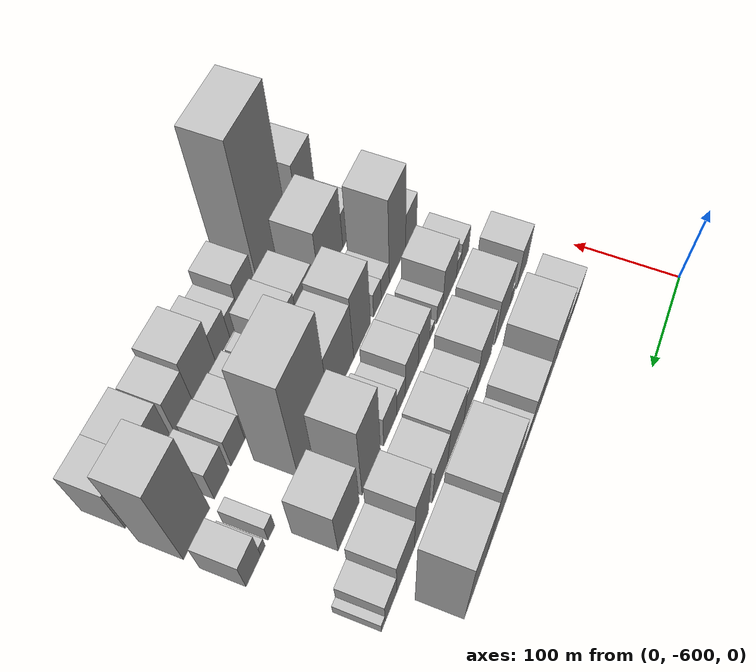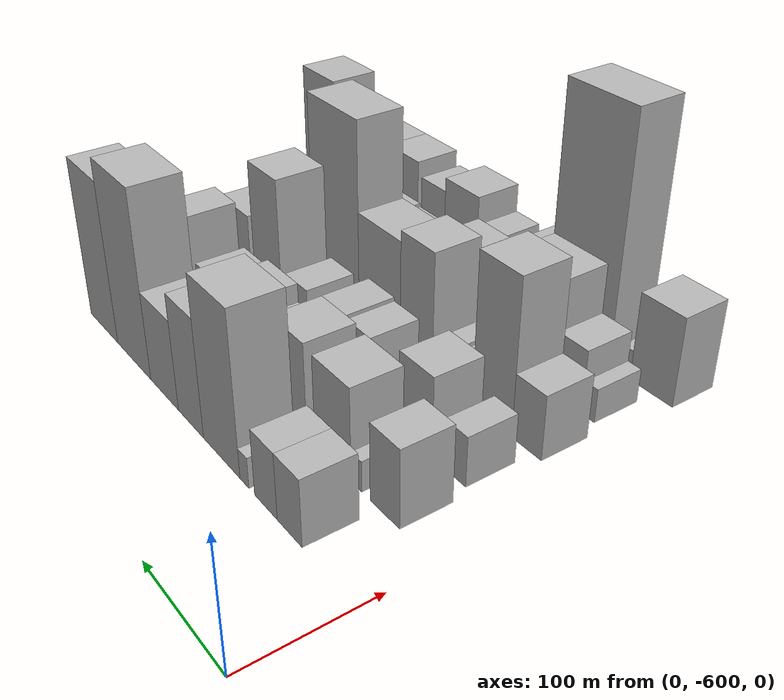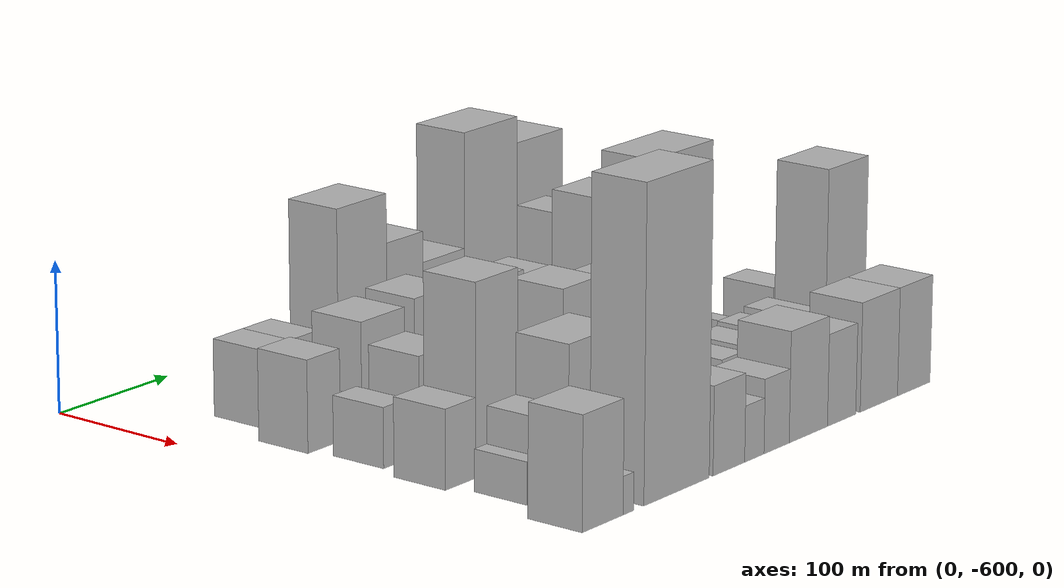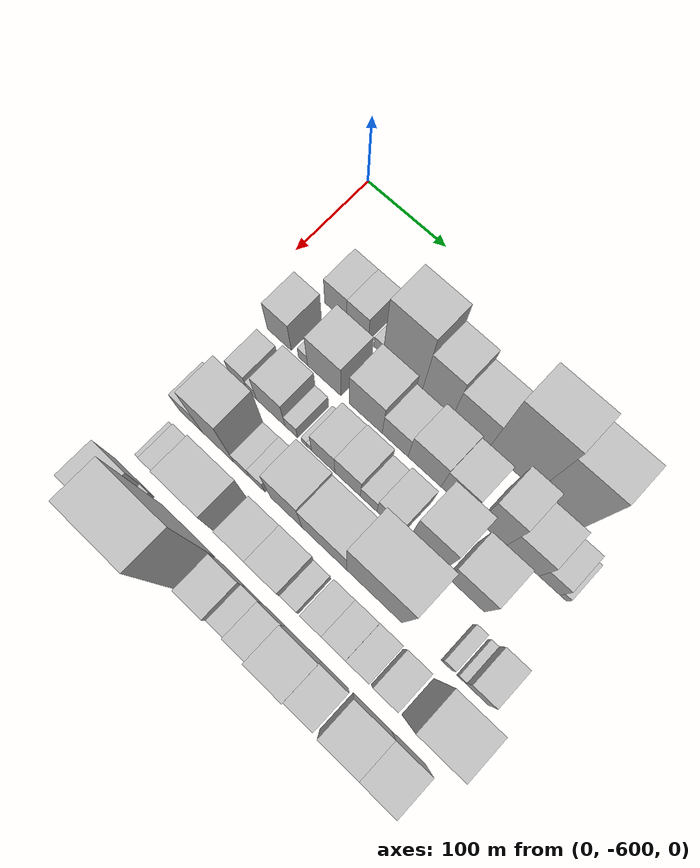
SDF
<sdf version="1.6">
 <world name="default">
  <model name="building_12">
   <static>1</static>
   <pose>100.0000 -529.5329 0 0.000000 0.000000 0.000000</pose>
   <link name="link">
    <pose>0 0 25.50 0 0 0</pose>
    <collision name="collision"><geometry><box><size>40.0000 28.2539 51.0000</size></box></geometry></collision>
    <visual name="visual">
     <cast_shadows>0</cast_shadows>
     <geometry><box><size>40.0000 28.2539 51.0000</size></box></geometry>
     <material>
      <script>
       <uri>model://HANNAS_wall/materials/scripts</uri>
       <uri>model://HANNAS_wall/materials/textures</uri>
       <name>vrc/HANNAS_wall</name>
      </script>
     </material>
    </visual>
   </link>
  </model>
  <model name="building_13">
   <static>1</static>
   <pose>100.0000 -501.8472 0 0.000000 0.000000 0.000000</pose>
   <link name="link">
    <pose>0 0 25.50 0 0 0</pose>
    <collision name="collision"><geometry><box><size>40.0000 27.1175 51.0000</size></box></geometry></collision>
    <visual name="visual">
     <cast_shadows>0</cast_shadows>
     <geometry><box><size>40.0000 27.1175 51.0000</size></box></geometry>
     <material>
      <script>
       <uri>model://HANNAS_wall/materials/scripts</uri>
       <uri>model://HANNAS_wall/materials/textures</uri>
       <name>vrc/HANNAS_wall</name>
      </script>
     </material>
    </visual>
   </link>
  </model>
  <model name="building_14">
   <static>1</static>
   <pose>100.0000 -475.6288 0 0.000000 0.000000 0.000000</pose>
   <link name="link">
    <pose>0 0 12.00 0 0 0</pose>
    <collision name="collision"><geometry><box><size>40.0000 11.3192 24.0000</size></box></geometry></collision>
    <visual name="visual">
     <cast_shadows>0</cast_shadows>
     <geometry><box><size>40.0000 11.3192 24.0000</size></box></geometry>
     <material>
      <script>
       <uri>model://HANNAS_wall/materials/scripts</uri>
       <uri>model://HANNAS_wall/materials/textures</uri>
       <name>vrc/HANNAS_wall</name>
      </script>
     </material>
    </visual>
   </link>
  </model>
  <model name="building_15">
   <static>1</static>
   <pose>100.0000 -445.5690 0 0.000000 0.000000 0.000000</pose>
   <link name="link">
    <pose>0 0 63.00 0 0 0</pose>
    <collision name="collision"><geometry><box><size>40.0000 48.8003 126.0000</size></box></geometry></collision>
    <visual name="visual">
     <cast_shadows>0</cast_shadows>
     <geometry><box><size>40.0000 48.8003 126.0000</size></box></geometry>
     <material>
      <script>
       <uri>model://HANNAS_wall/materials/scripts</uri>
       <uri>model://HANNAS_wall/materials/textures</uri>
       <name>vrc/HANNAS_wall</name>
      </script>
     </material>
    </visual>
   </link>
  </model>
  <model name="building_16">
   <static>1</static>
   <pose>100.0000 -402.9432 0 0.000000 0.000000 0.000000</pose>
   <link name="link">
    <pose>0 0 46.50 0 0 0</pose>
    <collision name="collision"><geometry><box><size>40.0000 36.4514 93.0000</size></box></geometry></collision>
    <visual name="visual">
     <cast_shadows>0</cast_shadows>
     <geometry><box><size>40.0000 36.4514 93.0000</size></box></geometry>
     <material>
      <script>
       <uri>model://HANNAS_wall/materials/scripts</uri>
       <uri>model://HANNAS_wall/materials/textures</uri>
       <name>vrc/HANNAS_wall</name>
      </script>
     </material>
    </visual>
   </link>
  </model>
  <model name="building_17">
   <static>1</static>
   <pose>100.0000 -363.1853 0 0.000000 0.000000 0.000000</pose>
   <link name="link">
    <pose>0 0 36.00 0 0 0</pose>
    <collision name="collision"><geometry><box><size>40.0000 43.0645 72.0000</size></box></geometry></collision>
    <visual name="visual">
     <cast_shadows>0</cast_shadows>
     <geometry><box><size>40.0000 43.0645 72.0000</size></box></geometry>
     <material>
      <script>
       <uri>model://HANNAS_wall/materials/scripts</uri>
       <uri>model://HANNAS_wall/materials/textures</uri>
       <name>vrc/HANNAS_wall</name>
      </script>
     </material>
    </visual>
   </link>
  </model>
  <model name="building_18">
   <static>1</static>
   <pose>100.0000 -313.5661 0 0.000000 0.000000 0.000000</pose>
   <link name="link">
    <pose>0 0 75.00 0 0 0</pose>
    <collision name="collision"><geometry><box><size>40.0000 56.1737 150.0000</size></box></geometry></collision>
    <visual name="visual">
     <cast_shadows>0</cast_shadows>
     <geometry><box><size>40.0000 56.1737 150.0000</size></box></geometry>
     <material>
      <script>
       <uri>model://HANNAS_wall/materials/scripts</uri>
       <uri>model://HANNAS_wall/materials/textures</uri>
       <name>vrc/HANNAS_wall</name>
      </script>
     </material>
    </visual>
   </link>
  </model>
  <model name="building_19">
   <static>1</static>
   <pose>100.0000 -260.8555 0 0.000000 0.000000 0.000000</pose>
   <link name="link">
    <pose>0 0 66.00 0 0 0</pose>
    <collision name="collision"><geometry><box><size>40.0000 49.2475 132.0000</size></box></geometry></collision>
    <visual name="visual">
     <cast_shadows>0</cast_shadows>
     <geometry><box><size>40.0000 49.2475 132.0000</size></box></geometry>
     <material>
      <script>
       <uri>model://HANNAS_wall/materials/scripts</uri>
       <uri>model://HANNAS_wall/materials/textures</uri>
       <name>vrc/HANNAS_wall</name>
      </script>
     </material>
    </visual>
   </link>
  </model>
  <model name="building_62">
   <static>1</static>
   <pose>155.0000 -548.5845 0 0.000000 0.000000 0.000000</pose>
   <link name="link">
    <pose>0 0 30.00 0 0 0</pose>
    <collision name="collision"><geometry><box><size>40.0000 30.6883 60.0000</size></box></geometry></collision>
    <visual name="visual">
     <cast_shadows>0</cast_shadows>
     <geometry><box><size>40.0000 30.6883 60.0000</size></box></geometry>
     <material>
      <script>
       <uri>model://HANNAS_wall/materials/scripts</uri>
       <uri>model://HANNAS_wall/materials/textures</uri>
       <name>vrc/HANNAS_wall</name>
      </script>
     </material>
    </visual>
   </link>
  </model>
  <model name="building_63">
   <static>1</static>
   <pose>155.0000 -518.3964 0 0.000000 0.000000 0.000000</pose>
   <link name="link">
    <pose>0 0 12.00 0 0 0</pose>
    <collision name="collision"><geometry><box><size>40.0000 11.6881 24.0000</size></box></geometry></collision>
    <visual name="visual">
     <cast_shadows>0</cast_shadows>
     <geometry><box><size>40.0000 11.6881 24.0000</size></box></geometry>
     <material>
      <script>
       <uri>model://HANNAS_wall/materials/scripts</uri>
       <uri>model://HANNAS_wall/materials/textures</uri>
       <name>vrc/HANNAS_wall</name>
      </script>
     </material>
    </visual>
   </link>
  </model>
  <model name="building_64">
   <static>1</static>
   <pose>155.0000 -491.5503 0 0.000000 0.000000 0.000000</pose>
   <link name="link">
    <pose>0 0 36.00 0 0 0</pose>
    <collision name="collision"><geometry><box><size>40.0000 42.0041 72.0000</size></box></geometry></collision>
    <visual name="visual">
     <cast_shadows>0</cast_shadows>
     <geometry><box><size>40.0000 42.0041 72.0000</size></box></geometry>
     <material>
      <script>
       <uri>model://HANNAS_wall/materials/scripts</uri>
       <uri>model://HANNAS_wall/materials/textures</uri>
       <name>vrc/HANNAS_wall</name>
      </script>
     </material>
    </visual>
   </link>
  </model>
  <model name="building_65">
   <static>1</static>
   <pose>155.0000 -440.3169 0 0.000000 0.000000 0.000000</pose>
   <link name="link">
    <pose>0 0 37.50 0 0 0</pose>
    <collision name="collision"><geometry><box><size>40.0000 40.4627 75.0000</size></box></geometry></collision>
    <visual name="visual">
     <cast_shadows>0</cast_shadows>
     <geometry><box><size>40.0000 40.4627 75.0000</size></box></geometry>
     <material>
      <script>
       <uri>model://HANNAS_wall/materials/scripts</uri>
       <uri>model://HANNAS_wall/materials/textures</uri>
       <name>vrc/HANNAS_wall</name>
      </script>
     </material>
    </visual>
   </link>
  </model>
  <model name="building_66">
   <static>1</static>
   <pose>155.0000 -404.3865 0 0.000000 0.000000 0.000000</pose>
   <link name="link">
    <pose>0 0 27.00 0 0 0</pose>
    <collision name="collision"><geometry><box><size>40.0000 31.3980 54.0000</size></box></geometry></collision>
    <visual name="visual">
     <cast_shadows>0</cast_shadows>
     <geometry><box><size>40.0000 31.3980 54.0000</size></box></geometry>
     <material>
      <script>
       <uri>model://HANNAS_wall/materials/scripts</uri>
       <uri>model://HANNAS_wall/materials/textures</uri>
       <name>vrc/HANNAS_wall</name>
      </script>
     </material>
    </visual>
   </link>
  </model>
  <model name="building_67">
   <static>1</static>
   <pose>155.0000 -368.8758 0 0.000000 0.000000 0.000000</pose>
   <link name="link">
    <pose>0 0 34.50 0 0 0</pose>
    <collision name="collision"><geometry><box><size>40.0000 39.6234 69.0000</size></box></geometry></collision>
    <visual name="visual">
     <cast_shadows>0</cast_shadows>
     <geometry><box><size>40.0000 39.6234 69.0000</size></box></geometry>
     <material>
      <script>
       <uri>model://HANNAS_wall/materials/scripts</uri>
       <uri>model://HANNAS_wall/materials/textures</uri>
       <name>vrc/HANNAS_wall</name>
      </script>
     </material>
    </visual>
   </link>
  </model>
  <model name="building_68">
   <static>1</static>
   <pose>155.0000 -331.5309 0 0.000000 0.000000 0.000000</pose>
   <link name="link">
    <pose>0 0 31.50 0 0 0</pose>
    <collision name="collision"><geometry><box><size>40.0000 35.0662 63.0000</size></box></geometry></collision>
    <visual name="visual">
     <cast_shadows>0</cast_shadows>
     <geometry><box><size>40.0000 35.0662 63.0000</size></box></geometry>
     <material>
      <script>
       <uri>model://HANNAS_wall/materials/scripts</uri>
       <uri>model://HANNAS_wall/materials/textures</uri>
       <name>vrc/HANNAS_wall</name>
      </script>
     </material>
    </visual>
   </link>
  </model>
  <model name="building_69">
   <static>1</static>
   <pose>155.0000 -289.3106 0 0.000000 0.000000 0.000000</pose>
   <link name="link">
    <pose>0 0 48.00 0 0 0</pose>
    <collision name="collision"><geometry><box><size>40.0000 31.3745 96.0000</size></box></geometry></collision>
    <visual name="visual">
     <cast_shadows>0</cast_shadows>
     <geometry><box><size>40.0000 31.3745 96.0000</size></box></geometry>
     <material>
      <script>
       <uri>model://HANNAS_wall/materials/scripts</uri>
       <uri>model://HANNAS_wall/materials/textures</uri>
       <name>vrc/HANNAS_wall</name>
      </script>
     </material>
    </visual>
   </link>
  </model>
  <model name="building_70">
   <static>1</static>
   <pose>155.0000 -254.7182 0 0.000000 0.000000 0.000000</pose>
   <link name="link">
    <pose>0 0 33.00 0 0 0</pose>
    <collision name="collision"><geometry><box><size>40.0000 37.8103 66.0000</size></box></geometry></collision>
    <visual name="visual">
     <cast_shadows>0</cast_shadows>
     <geometry><box><size>40.0000 37.8103 66.0000</size></box></geometry>
     <material>
      <script>
       <uri>model://HANNAS_wall/materials/scripts</uri>
       <uri>model://HANNAS_wall/materials/textures</uri>
       <name>vrc/HANNAS_wall</name>
      </script>
     </material>
    </visual>
   </link>
  </model>
  <model name="building_71">
   <static>1</static>
   <pose>155.0000 -224.0102 0 0.000000 0.000000 0.000000</pose>
   <link name="link">
    <pose>0 0 21.00 0 0 0</pose>
    <collision name="collision"><geometry><box><size>40.0000 23.6056 42.0000</size></box></geometry></collision>
    <visual name="visual">
     <cast_shadows>0</cast_shadows>
     <geometry><box><size>40.0000 23.6056 42.0000</size></box></geometry>
     <material>
      <script>
       <uri>model://HANNAS_wall/materials/scripts</uri>
       <uri>model://HANNAS_wall/materials/textures</uri>
       <name>vrc/HANNAS_wall</name>
      </script>
     </material>
    </visual>
   </link>
  </model>
  <model name="building_72">
   <static>1</static>
   <pose>155.0000 -208.3590 0 0.000000 0.000000 0.000000</pose>
   <link name="link">
    <pose>0 0 9.00 0 0 0</pose>
    <collision name="collision"><geometry><box><size>40.0000 7.6968 18.0000</size></box></geometry></collision>
    <visual name="visual">
     <cast_shadows>0</cast_shadows>
     <geometry><box><size>40.0000 7.6968 18.0000</size></box></geometry>
     <material>
      <script>
       <uri>model://HANNAS_wall/materials/scripts</uri>
       <uri>model://HANNAS_wall/materials/textures</uri>
       <name>vrc/HANNAS_wall</name>
      </script>
     </material>
    </visual>
   </link>
  </model>
  <model name="building_116">
   <static>1</static>
   <pose>210.0000 -546.1679 0 0.000000 0.000000 0.000000</pose>
   <link name="link">
    <pose>0 0 19.50 0 0 0</pose>
    <collision name="collision"><geometry><box><size>40.0000 22.7940 39.0000</size></box></geometry></collision>
    <visual name="visual">
     <cast_shadows>0</cast_shadows>
     <geometry><box><size>40.0000 22.7940 39.0000</size></box></geometry>
     <material>
      <script>
       <uri>model://HANNAS_wall/materials/scripts</uri>
       <uri>model://HANNAS_wall/materials/textures</uri>
       <name>vrc/HANNAS_wall</name>
      </script>
     </material>
    </visual>
   </link>
  </model>
  <model name="building_117">
   <static>1</static>
   <pose>210.0000 -529.0434 0 0.000000 0.000000 0.000000</pose>
   <link name="link">
    <pose>0 0 13.50 0 0 0</pose>
    <collision name="collision"><geometry><box><size>40.0000 11.4550 27.0000</size></box></geometry></collision>
    <visual name="visual">
     <cast_shadows>0</cast_shadows>
     <geometry><box><size>40.0000 11.4550 27.0000</size></box></geometry>
     <material>
      <script>
       <uri>model://HANNAS_wall/materials/scripts</uri>
       <uri>model://HANNAS_wall/materials/textures</uri>
       <name>vrc/HANNAS_wall</name>
      </script>
     </material>
    </visual>
   </link>
  </model>
  <model name="building_118">
   <static>1</static>
   <pose>210.0000 -505.2971 0 0.000000 0.000000 0.000000</pose>
   <link name="link">
    <pose>0 0 31.50 0 0 0</pose>
    <collision name="collision"><geometry><box><size>40.0000 36.0377 63.0000</size></box></geometry></collision>
    <visual name="visual">
     <cast_shadows>0</cast_shadows>
     <geometry><box><size>40.0000 36.0377 63.0000</size></box></geometry>
     <material>
      <script>
       <uri>model://HANNAS_wall/materials/scripts</uri>
       <uri>model://HANNAS_wall/materials/textures</uri>
       <name>vrc/HANNAS_wall</name>
      </script>
     </material>
    </visual>
   </link>
  </model>
  <model name="building_119">
   <static>1</static>
   <pose>210.0000 -479.4809 0 0.000000 0.000000 0.000000</pose>
   <link name="link">
    <pose>0 0 15.00 0 0 0</pose>
    <collision name="collision"><geometry><box><size>40.0000 15.5946 30.0000</size></box></geometry></collision>
    <visual name="visual">
     <cast_shadows>0</cast_shadows>
     <geometry><box><size>40.0000 15.5946 30.0000</size></box></geometry>
     <material>
      <script>
       <uri>model://HANNAS_wall/materials/scripts</uri>
       <uri>model://HANNAS_wall/materials/textures</uri>
       <name>vrc/HANNAS_wall</name>
      </script>
     </material>
    </visual>
   </link>
  </model>
  <model name="building_120">
   <static>1</static>
   <pose>210.0000 -463.5826 0 0.000000 0.000000 0.000000</pose>
   <link name="link">
    <pose>0 0 7.50 0 0 0</pose>
    <collision name="collision"><geometry><box><size>40.0000 6.2021 15.0000</size></box></geometry></collision>
    <visual name="visual">
     <cast_shadows>0</cast_shadows>
     <geometry><box><size>40.0000 6.2021 15.0000</size></box></geometry>
     <material>
      <script>
       <uri>model://HANNAS_wall/materials/scripts</uri>
       <uri>model://HANNAS_wall/materials/textures</uri>
       <name>vrc/HANNAS_wall</name>
      </script>
     </material>
    </visual>
   </link>
  </model>
  <model name="building_121">
   <static>1</static>
   <pose>210.0000 -457.4552 0 0.000000 0.000000 0.000000</pose>
   <link name="link">
    <pose>0 0 7.50 0 0 0</pose>
    <collision name="collision"><geometry><box><size>40.0000 6.0527 15.0000</size></box></geometry></collision>
    <visual name="visual">
     <cast_shadows>0</cast_shadows>
     <geometry><box><size>40.0000 6.0527 15.0000</size></box></geometry>
     <material>
      <script>
       <uri>model://HANNAS_wall/materials/scripts</uri>
       <uri>model://HANNAS_wall/materials/textures</uri>
       <name>vrc/HANNAS_wall</name>
      </script>
     </material>
    </visual>
   </link>
  </model>
  <model name="building_122">
   <static>1</static>
   <pose>210.0000 -440.1489 0 0.000000 0.000000 0.000000</pose>
   <link name="link">
    <pose>0 0 27.00 0 0 0</pose>
    <collision name="collision"><geometry><box><size>40.0000 28.5598 54.0000</size></box></geometry></collision>
    <visual name="visual">
     <cast_shadows>0</cast_shadows>
     <geometry><box><size>40.0000 28.5598 54.0000</size></box></geometry>
     <material>
      <script>
       <uri>model://HANNAS_wall/materials/scripts</uri>
       <uri>model://HANNAS_wall/materials/textures</uri>
       <name>vrc/HANNAS_wall</name>
      </script>
     </material>
    </visual>
   </link>
  </model>
  <model name="building_123">
   <static>1</static>
   <pose>210.0000 -410.4215 0 0.000000 0.000000 0.000000</pose>
   <link name="link">
    <pose>0 0 28.50 0 0 0</pose>
    <collision name="collision"><geometry><box><size>40.0000 30.8951 57.0000</size></box></geometry></collision>
    <visual name="visual">
     <cast_shadows>0</cast_shadows>
     <geometry><box><size>40.0000 30.8951 57.0000</size></box></geometry>
     <material>
      <script>
       <uri>model://HANNAS_wall/materials/scripts</uri>
       <uri>model://HANNAS_wall/materials/textures</uri>
       <name>vrc/HANNAS_wall</name>
      </script>
     </material>
    </visual>
   </link>
  </model>
  <model name="building_124">
   <static>1</static>
   <pose>210.0000 -385.0666 0 0.000000 0.000000 0.000000</pose>
   <link name="link">
    <pose>0 0 18.00 0 0 0</pose>
    <collision name="collision"><geometry><box><size>40.0000 19.8147 36.0000</size></box></geometry></collision>
    <visual name="visual">
     <cast_shadows>0</cast_shadows>
     <geometry><box><size>40.0000 19.8147 36.0000</size></box></geometry>
     <material>
      <script>
       <uri>model://HANNAS_wall/materials/scripts</uri>
       <uri>model://HANNAS_wall/materials/textures</uri>
       <name>vrc/HANNAS_wall</name>
      </script>
     </material>
    </visual>
   </link>
  </model>
  <model name="building_125">
   <static>1</static>
   <pose>210.0000 -360.4549 0 0.000000 0.000000 0.000000</pose>
   <link name="link">
    <pose>0 0 25.50 0 0 0</pose>
    <collision name="collision"><geometry><box><size>40.0000 29.4086 51.0000</size></box></geometry></collision>
    <visual name="visual">
     <cast_shadows>0</cast_shadows>
     <geometry><box><size>40.0000 29.4086 51.0000</size></box></geometry>
     <material>
      <script>
       <uri>model://HANNAS_wall/materials/scripts</uri>
       <uri>model://HANNAS_wall/materials/textures</uri>
       <name>vrc/HANNAS_wall</name>
      </script>
     </material>
    </visual>
   </link>
  </model>
  <model name="building_126">
   <static>1</static>
   <pose>210.0000 -319.0028 0 0.000000 0.000000 0.000000</pose>
   <link name="link">
    <pose>0 0 61.50 0 0 0</pose>
    <collision name="collision"><geometry><box><size>40.0000 39.4955 123.0000</size></box></geometry></collision>
    <visual name="visual">
     <cast_shadows>0</cast_shadows>
     <geometry><box><size>40.0000 39.4955 123.0000</size></box></geometry>
     <material>
      <script>
       <uri>model://HANNAS_wall/materials/scripts</uri>
       <uri>model://HANNAS_wall/materials/textures</uri>
       <name>vrc/HANNAS_wall</name>
      </script>
     </material>
    </visual>
   </link>
  </model>
  <model name="building_127">
   <static>1</static>
   <pose>210.0000 -271.5386 0 0.000000 0.000000 0.000000</pose>
   <link name="link">
    <pose>0 0 37.50 0 0 0</pose>
    <collision name="collision"><geometry><box><size>40.0000 43.4330 75.0000</size></box></geometry></collision>
    <visual name="visual">
     <cast_shadows>0</cast_shadows>
     <geometry><box><size>40.0000 43.4330 75.0000</size></box></geometry>
     <material>
      <script>
       <uri>model://HANNAS_wall/materials/scripts</uri>
       <uri>model://HANNAS_wall/materials/textures</uri>
       <name>vrc/HANNAS_wall</name>
      </script>
     </material>
    </visual>
   </link>
  </model>
  <model name="building_169">
   <static>1</static>
   <pose>265.0000 -551.5273 0 0.000000 0.000000 0.000000</pose>
   <link name="link">
    <pose>0 0 25.50 0 0 0</pose>
    <collision name="collision"><geometry><box><size>40.0000 28.8281 51.0000</size></box></geometry></collision>
    <visual name="visual">
     <cast_shadows>0</cast_shadows>
     <geometry><box><size>40.0000 28.8281 51.0000</size></box></geometry>
     <material>
      <script>
       <uri>model://HANNAS_wall/materials/scripts</uri>
       <uri>model://HANNAS_wall/materials/textures</uri>
       <name>vrc/HANNAS_wall</name>
      </script>
     </material>
    </visual>
   </link>
  </model>
  <model name="building_170">
   <static>1</static>
   <pose>265.0000 -516.5887 0 0.000000 0.000000 0.000000</pose>
   <link name="link">
    <pose>0 0 61.50 0 0 0</pose>
    <collision name="collision"><geometry><box><size>40.0000 41.0491 123.0000</size></box></geometry></collision>
    <visual name="visual">
     <cast_shadows>0</cast_shadows>
     <geometry><box><size>40.0000 41.0491 123.0000</size></box></geometry>
     <material>
      <script>
       <uri>model://HANNAS_wall/materials/scripts</uri>
       <uri>model://HANNAS_wall/materials/textures</uri>
       <name>vrc/HANNAS_wall</name>
      </script>
     </material>
    </visual>
   </link>
  </model>
  <model name="building_171">
   <static>1</static>
   <pose>265.0000 -486.2040 0 0.000000 0.000000 0.000000</pose>
   <link name="link">
    <pose>0 0 16.50 0 0 0</pose>
    <collision name="collision"><geometry><box><size>40.0000 19.7202 33.0000</size></box></geometry></collision>
    <visual name="visual">
     <cast_shadows>0</cast_shadows>
     <geometry><box><size>40.0000 19.7202 33.0000</size></box></geometry>
     <material>
      <script>
       <uri>model://HANNAS_wall/materials/scripts</uri>
       <uri>model://HANNAS_wall/materials/textures</uri>
       <name>vrc/HANNAS_wall</name>
      </script>
     </material>
    </visual>
   </link>
  </model>
  <model name="building_172">
   <static>1</static>
   <pose>265.0000 -467.2235 0 0.000000 0.000000 0.000000</pose>
   <link name="link">
    <pose>0 0 18.00 0 0 0</pose>
    <collision name="collision"><geometry><box><size>40.0000 18.2410 36.0000</size></box></geometry></collision>
    <visual name="visual">
     <cast_shadows>0</cast_shadows>
     <geometry><box><size>40.0000 18.2410 36.0000</size></box></geometry>
     <material>
      <script>
       <uri>model://HANNAS_wall/materials/scripts</uri>
       <uri>model://HANNAS_wall/materials/textures</uri>
       <name>vrc/HANNAS_wall</name>
      </script>
     </material>
    </visual>
   </link>
  </model>
  <model name="building_173">
   <static>1</static>
   <pose>265.0000 -431.8318 0 0.000000 0.000000 0.000000</pose>
   <link name="link">
    <pose>0 0 49.50 0 0 0</pose>
    <collision name="collision"><geometry><box><size>40.0000 38.5423 99.0000</size></box></geometry></collision>
    <visual name="visual">
     <cast_shadows>0</cast_shadows>
     <geometry><box><size>40.0000 38.5423 99.0000</size></box></geometry>
     <material>
      <script>
       <uri>model://HANNAS_wall/materials/scripts</uri>
       <uri>model://HANNAS_wall/materials/textures</uri>
       <name>vrc/HANNAS_wall</name>
      </script>
     </material>
    </visual>
   </link>
  </model>
  <model name="building_174">
   <static>1</static>
   <pose>265.0000 -386.0556 0 0.000000 0.000000 0.000000</pose>
   <link name="link">
    <pose>0 0 45.00 0 0 0</pose>
    <collision name="collision"><geometry><box><size>40.0000 53.0102 90.0000</size></box></geometry></collision>
    <visual name="visual">
     <cast_shadows>0</cast_shadows>
     <geometry><box><size>40.0000 53.0102 90.0000</size></box></geometry>
     <material>
      <script>
       <uri>model://HANNAS_wall/materials/scripts</uri>
       <uri>model://HANNAS_wall/materials/textures</uri>
       <name>vrc/HANNAS_wall</name>
      </script>
     </material>
    </visual>
   </link>
  </model>
  <model name="building_175">
   <static>1</static>
   <pose>265.0000 -327.1601 0 0.000000 0.000000 0.000000</pose>
   <link name="link">
    <pose>0 0 81.00 0 0 0</pose>
    <collision name="collision"><geometry><box><size>40.0000 64.7807 162.0000</size></box></geometry></collision>
    <visual name="visual">
     <cast_shadows>0</cast_shadows>
     <geometry><box><size>40.0000 64.7807 162.0000</size></box></geometry>
     <material>
      <script>
       <uri>model://HANNAS_wall/materials/scripts</uri>
       <uri>model://HANNAS_wall/materials/textures</uri>
       <name>vrc/HANNAS_wall</name>
      </script>
     </material>
    </visual>
   </link>
  </model>
  <model name="building_176">
   <static>1</static>
   <pose>265.0000 -243.8890 0 0.000000 0.000000 0.000000</pose>
   <link name="link">
    <pose>0 0 13.50 0 0 0</pose>
    <collision name="collision"><geometry><box><size>40.0000 12.5872 27.0000</size></box></geometry></collision>
    <visual name="visual">
     <cast_shadows>0</cast_shadows>
     <geometry><box><size>40.0000 12.5872 27.0000</size></box></geometry>
     <material>
      <script>
       <uri>model://HANNAS_wall/materials/scripts</uri>
       <uri>model://HANNAS_wall/materials/textures</uri>
       <name>vrc/HANNAS_wall</name>
      </script>
     </material>
    </visual>
   </link>
  </model>
  <model name="building_177">
   <static>1</static>
   <pose>265.0000 -228.3760 0 0.000000 0.000000 0.000000</pose>
   <link name="link">
    <pose>0 0 9.00 0 0 0</pose>
    <collision name="collision"><geometry><box><size>40.0000 8.4387 18.0000</size></box></geometry></collision>
    <visual name="visual">
     <cast_shadows>0</cast_shadows>
     <geometry><box><size>40.0000 8.4387 18.0000</size></box></geometry>
     <material>
      <script>
       <uri>model://HANNAS_wall/materials/scripts</uri>
       <uri>model://HANNAS_wall/materials/textures</uri>
       <name>vrc/HANNAS_wall</name>
      </script>
     </material>
    </visual>
   </link>
  </model>
  <model name="building_178">
   <static>1</static>
   <pose>265.0000 -210.9966 0 0.000000 0.000000 0.000000</pose>
   <link name="link">
    <pose>0 0 24.00 0 0 0</pose>
    <collision name="collision"><geometry><box><size>40.0000 26.3201 48.0000</size></box></geometry></collision>
    <visual name="visual">
     <cast_shadows>0</cast_shadows>
     <geometry><box><size>40.0000 26.3201 48.0000</size></box></geometry>
     <material>
      <script>
       <uri>model://HANNAS_wall/materials/scripts</uri>
       <uri>model://HANNAS_wall/materials/textures</uri>
       <name>vrc/HANNAS_wall</name>
      </script>
     </material>
    </visual>
   </link>
  </model>
  <model name="building_220">
   <static>1</static>
   <pose>320.0000 -551.1212 0 0.000000 0.000000 0.000000</pose>
   <link name="link">
    <pose>0 0 13.50 0 0 0</pose>
    <collision name="collision"><geometry><box><size>40.0000 12.1001 27.0000</size></box></geometry></collision>
    <visual name="visual">
     <cast_shadows>0</cast_shadows>
     <geometry><box><size>40.0000 12.1001 27.0000</size></box></geometry>
     <material>
      <script>
       <uri>model://HANNAS_wall/materials/scripts</uri>
       <uri>model://HANNAS_wall/materials/textures</uri>
       <name>vrc/HANNAS_wall</name>
      </script>
     </material>
    </visual>
   </link>
  </model>
  <model name="building_221">
   <static>1</static>
   <pose>320.0000 -531.0703 0 0.000000 0.000000 0.000000</pose>
   <link name="link">
    <pose>0 0 25.50 0 0 0</pose>
    <collision name="collision"><geometry><box><size>40.0000 28.0016 51.0000</size></box></geometry></collision>
    <visual name="visual">
     <cast_shadows>0</cast_shadows>
     <geometry><box><size>40.0000 28.0016 51.0000</size></box></geometry>
     <material>
      <script>
       <uri>model://HANNAS_wall/materials/scripts</uri>
       <uri>model://HANNAS_wall/materials/textures</uri>
       <name>vrc/HANNAS_wall</name>
      </script>
     </material>
    </visual>
   </link>
  </model>
  <model name="building_222">
   <static>1</static>
   <pose>320.0000 -490.8190 0 0.000000 0.000000 0.000000</pose>
   <link name="link">
    <pose>0 0 45.00 0 0 0</pose>
    <collision name="collision"><geometry><box><size>40.0000 52.5011 90.0000</size></box></geometry></collision>
    <visual name="visual">
     <cast_shadows>0</cast_shadows>
     <geometry><box><size>40.0000 52.5011 90.0000</size></box></geometry>
     <material>
      <script>
       <uri>model://HANNAS_wall/materials/scripts</uri>
       <uri>model://HANNAS_wall/materials/textures</uri>
       <name>vrc/HANNAS_wall</name>
      </script>
     </material>
    </visual>
   </link>
  </model>
  <model name="building_223">
   <static>1</static>
   <pose>320.0000 -436.7740 0 0.000000 0.000000 0.000000</pose>
   <link name="link">
    <pose>0 0 30.00 0 0 0</pose>
    <collision name="collision"><geometry><box><size>40.0000 35.5889 60.0000</size></box></geometry></collision>
    <visual name="visual">
     <cast_shadows>0</cast_shadows>
     <geometry><box><size>40.0000 35.5889 60.0000</size></box></geometry>
     <material>
      <script>
       <uri>model://HANNAS_wall/materials/scripts</uri>
       <uri>model://HANNAS_wall/materials/textures</uri>
       <name>vrc/HANNAS_wall</name>
      </script>
     </material>
    </visual>
   </link>
  </model>
  <model name="building_224">
   <static>1</static>
   <pose>320.0000 -400.8608 0 0.000000 0.000000 0.000000</pose>
   <link name="link">
    <pose>0 0 33.00 0 0 0</pose>
    <collision name="collision"><geometry><box><size>40.0000 36.2374 66.0000</size></box></geometry></collision>
    <visual name="visual">
     <cast_shadows>0</cast_shadows>
     <geometry><box><size>40.0000 36.2374 66.0000</size></box></geometry>
     <material>
      <script>
       <uri>model://HANNAS_wall/materials/scripts</uri>
       <uri>model://HANNAS_wall/materials/textures</uri>
       <name>vrc/HANNAS_wall</name>
      </script>
     </material>
    </visual>
   </link>
  </model>
  <model name="building_225">
   <static>1</static>
   <pose>320.0000 -373.2151 0 0.000000 0.000000 0.000000</pose>
   <link name="link">
    <pose>0 0 18.00 0 0 0</pose>
    <collision name="collision"><geometry><box><size>40.0000 19.0541 36.0000</size></box></geometry></collision>
    <visual name="visual">
     <cast_shadows>0</cast_shadows>
     <geometry><box><size>40.0000 19.0541 36.0000</size></box></geometry>
     <material>
      <script>
       <uri>model://HANNAS_wall/materials/scripts</uri>
       <uri>model://HANNAS_wall/materials/textures</uri>
       <name>vrc/HANNAS_wall</name>
      </script>
     </material>
    </visual>
   </link>
  </model>
  <model name="building_226">
   <static>1</static>
   <pose>320.0000 -347.6322 0 0.000000 0.000000 0.000000</pose>
   <link name="link">
    <pose>0 0 21.00 0 0 0</pose>
    <collision name="collision"><geometry><box><size>40.0000 24.1118 42.0000</size></box></geometry></collision>
    <visual name="visual">
     <cast_shadows>0</cast_shadows>
     <geometry><box><size>40.0000 24.1118 42.0000</size></box></geometry>
     <material>
      <script>
       <uri>model://HANNAS_wall/materials/scripts</uri>
       <uri>model://HANNAS_wall/materials/textures</uri>
       <name>vrc/HANNAS_wall</name>
      </script>
     </material>
    </visual>
   </link>
  </model>
  <model name="building_227">
   <static>1</static>
   <pose>320.0000 -322.1634 0 0.000000 0.000000 0.000000</pose>
   <link name="link">
    <pose>0 0 22.50 0 0 0</pose>
    <collision name="collision"><geometry><box><size>40.0000 26.8257 45.0000</size></box></geometry></collision>
    <visual name="visual">
     <cast_shadows>0</cast_shadows>
     <geometry><box><size>40.0000 26.8257 45.0000</size></box></geometry>
     <material>
      <script>
       <uri>model://HANNAS_wall/materials/scripts</uri>
       <uri>model://HANNAS_wall/materials/textures</uri>
       <name>vrc/HANNAS_wall</name>
      </script>
     </material>
    </visual>
   </link>
  </model>
  <model name="building_228">
   <static>1</static>
   <pose>320.0000 -296.0032 0 0.000000 0.000000 0.000000</pose>
   <link name="link">
    <pose>0 0 24.00 0 0 0</pose>
    <collision name="collision"><geometry><box><size>40.0000 25.4947 48.0000</size></box></geometry></collision>
    <visual name="visual">
     <cast_shadows>0</cast_shadows>
     <geometry><box><size>40.0000 25.4947 48.0000</size></box></geometry>
     <material>
      <script>
       <uri>model://HANNAS_wall/materials/scripts</uri>
       <uri>model://HANNAS_wall/materials/textures</uri>
       <name>vrc/HANNAS_wall</name>
      </script>
     </material>
    </visual>
   </link>
  </model>
  <model name="building_229">
   <static>1</static>
   <pose>320.0000 -265.9018 0 0.000000 0.000000 0.000000</pose>
   <link name="link">
    <pose>0 0 25.50 0 0 0</pose>
    <collision name="collision"><geometry><box><size>40.0000 26.7082 51.0000</size></box></geometry></collision>
    <visual name="visual">
     <cast_shadows>0</cast_shadows>
     <geometry><box><size>40.0000 26.7082 51.0000</size></box></geometry>
     <material>
      <script>
       <uri>model://HANNAS_wall/materials/scripts</uri>
       <uri>model://HANNAS_wall/materials/textures</uri>
       <name>vrc/HANNAS_wall</name>
      </script>
     </material>
    </visual>
   </link>
  </model>
  <model name="building_230">
   <static>1</static>
   <pose>320.0000 -221.8286 0 0.000000 0.000000 0.000000</pose>
   <link name="link">
    <pose>0 0 70.50 0 0 0</pose>
    <collision name="collision"><geometry><box><size>40.0000 45.4381 141.0000</size></box></geometry></collision>
    <visual name="visual">
     <cast_shadows>0</cast_shadows>
     <geometry><box><size>40.0000 45.4381 141.0000</size></box></geometry>
     <material>
      <script>
       <uri>model://HANNAS_wall/materials/scripts</uri>
       <uri>model://HANNAS_wall/materials/textures</uri>
       <name>vrc/HANNAS_wall</name>
      </script>
     </material>
    </visual>
   </link>
  </model>
  <model name="building_272">
   <static>1</static>
   <pose>375.0000 -555.9185 0 0.000000 0.000000 0.000000</pose>
   <link name="link">
    <pose>0 0 36.00 0 0 0</pose>
    <collision name="collision"><geometry><box><size>40.0000 39.7486 72.0000</size></box></geometry></collision>
    <visual name="visual">
     <cast_shadows>0</cast_shadows>
     <geometry><box><size>40.0000 39.7486 72.0000</size></box></geometry>
     <material>
      <script>
       <uri>model://HANNAS_wall/materials/scripts</uri>
       <uri>model://HANNAS_wall/materials/textures</uri>
       <name>vrc/HANNAS_wall</name>
      </script>
     </material>
    </visual>
   </link>
  </model>
  <model name="building_273">
   <static>1</static>
   <pose>375.0000 -530.7981 0 0.000000 0.000000 0.000000</pose>
   <link name="link">
    <pose>0 0 12.00 0 0 0</pose>
    <collision name="collision"><geometry><box><size>40.0000 10.4922 24.0000</size></box></geometry></collision>
    <visual name="visual">
     <cast_shadows>0</cast_shadows>
     <geometry><box><size>40.0000 10.4922 24.0000</size></box></geometry>
     <material>
      <script>
       <uri>model://HANNAS_wall/materials/scripts</uri>
       <uri>model://HANNAS_wall/materials/textures</uri>
       <name>vrc/HANNAS_wall</name>
      </script>
     </material>
    </visual>
   </link>
  </model>
  <model name="building_274">
   <static>1</static>
   <pose>375.0000 -482.4165 0 0.000000 0.000000 0.000000</pose>
   <link name="link">
    <pose>0 0 99.00 0 0 0</pose>
    <collision name="collision"><geometry><box><size>40.0000 66.2709 198.0000</size></box></geometry></collision>
    <visual name="visual">
     <cast_shadows>0</cast_shadows>
     <geometry><box><size>40.0000 66.2709 198.0000</size></box></geometry>
     <material>
      <script>
       <uri>model://HANNAS_wall/materials/scripts</uri>
       <uri>model://HANNAS_wall/materials/textures</uri>
       <name>vrc/HANNAS_wall</name>
      </script>
     </material>
    </visual>
   </link>
  </model>
  <model name="building_275">
   <static>1</static>
   <pose>375.0000 -428.7172 0 0.000000 0.000000 0.000000</pose>
   <link name="link">
    <pose>0 0 28.50 0 0 0</pose>
    <collision name="collision"><geometry><box><size>40.0000 33.1277 57.0000</size></box></geometry></collision>
    <visual name="visual">
     <cast_shadows>0</cast_shadows>
     <geometry><box><size>40.0000 33.1277 57.0000</size></box></geometry>
     <material>
      <script>
       <uri>model://HANNAS_wall/materials/scripts</uri>
       <uri>model://HANNAS_wall/materials/textures</uri>
       <name>vrc/HANNAS_wall</name>
      </script>
     </material>
    </visual>
   </link>
  </model>
  <model name="building_276">
   <static>1</static>
   <pose>375.0000 -401.8775 0 0.000000 0.000000 0.000000</pose>
   <link name="link">
    <pose>0 0 18.00 0 0 0</pose>
    <collision name="collision"><geometry><box><size>40.0000 20.5517 36.0000</size></box></geometry></collision>
    <visual name="visual">
     <cast_shadows>0</cast_shadows>
     <geometry><box><size>40.0000 20.5517 36.0000</size></box></geometry>
     <material>
      <script>
       <uri>model://HANNAS_wall/materials/scripts</uri>
       <uri>model://HANNAS_wall/materials/textures</uri>
       <name>vrc/HANNAS_wall</name>
      </script>
     </material>
    </visual>
   </link>
  </model>
  <model name="building_277">
   <static>1</static>
   <pose>375.0000 -378.0465 0 0.000000 0.000000 0.000000</pose>
   <link name="link">
    <pose>0 0 24.00 0 0 0</pose>
    <collision name="collision"><geometry><box><size>40.0000 27.1101 48.0000</size></box></geometry></collision>
    <visual name="visual">
     <cast_shadows>0</cast_shadows>
     <geometry><box><size>40.0000 27.1101 48.0000</size></box></geometry>
     <material>
      <script>
       <uri>model://HANNAS_wall/materials/scripts</uri>
       <uri>model://HANNAS_wall/materials/textures</uri>
       <name>vrc/HANNAS_wall</name>
      </script>
     </material>
    </visual>
   </link>
  </model>
  <model name="building_278">
   <static>1</static>
   <pose>375.0000 -343.4576 0 0.000000 0.000000 0.000000</pose>
   <link name="link">
    <pose>0 0 36.00 0 0 0</pose>
    <collision name="collision"><geometry><box><size>40.0000 42.0677 72.0000</size></box></geometry></collision>
    <visual name="visual">
     <cast_shadows>0</cast_shadows>
     <geometry><box><size>40.0000 42.0677 72.0000</size></box></geometry>
     <material>
      <script>
       <uri>model://HANNAS_wall/materials/scripts</uri>
       <uri>model://HANNAS_wall/materials/textures</uri>
       <name>vrc/HANNAS_wall</name>
      </script>
     </material>
    </visual>
   </link>
  </model>
  <model name="building_279">
   <static>1</static>
   <pose>375.0000 -306.5464 0 0.000000 0.000000 0.000000</pose>
   <link name="link">
    <pose>0 0 30.00 0 0 0</pose>
    <collision name="collision"><geometry><box><size>40.0000 31.7548 60.0000</size></box></geometry></collision>
    <visual name="visual">
     <cast_shadows>0</cast_shadows>
     <geometry><box><size>40.0000 31.7548 60.0000</size></box></geometry>
     <material>
      <script>
       <uri>model://HANNAS_wall/materials/scripts</uri>
       <uri>model://HANNAS_wall/materials/textures</uri>
       <name>vrc/HANNAS_wall</name>
      </script>
     </material>
    </visual>
   </link>
  </model>
  <model name="building_280">
   <static>1</static>
   <pose>375.0000 -264.2446 0 0.000000 0.000000 0.000000</pose>
   <link name="link">
    <pose>0 0 36.00 0 0 0</pose>
    <collision name="collision"><geometry><box><size>40.0000 42.8487 72.0000</size></box></geometry></collision>
    <visual name="visual">
     <cast_shadows>0</cast_shadows>
     <geometry><box><size>40.0000 42.8487 72.0000</size></box></geometry>
     <material>
      <script>
       <uri>model://HANNAS_wall/materials/scripts</uri>
       <uri>model://HANNAS_wall/materials/textures</uri>
       <name>vrc/HANNAS_wall</name>
      </script>
     </material>
    </visual>
   </link>
  </model>
  <model name="building_281">
   <static>1</static>
   <pose>375.0000 -223.7722 0 0.000000 0.000000 0.000000</pose>
   <link name="link">
    <pose>0 0 36.00 0 0 0</pose>
    <collision name="collision"><geometry><box><size>40.0000 38.0961 72.0000</size></box></geometry></collision>
    <visual name="visual">
     <cast_shadows>0</cast_shadows>
     <geometry><box><size>40.0000 38.0961 72.0000</size></box></geometry>
     <material>
      <script>
       <uri>model://HANNAS_wall/materials/scripts</uri>
       <uri>model://HANNAS_wall/materials/textures</uri>
       <name>vrc/HANNAS_wall</name>
      </script>
     </material>
    </visual>
   </link>
  </model>
 </world>
</sdf>
